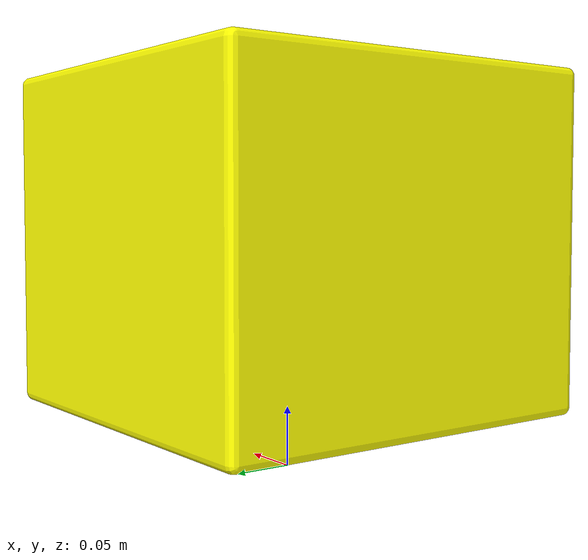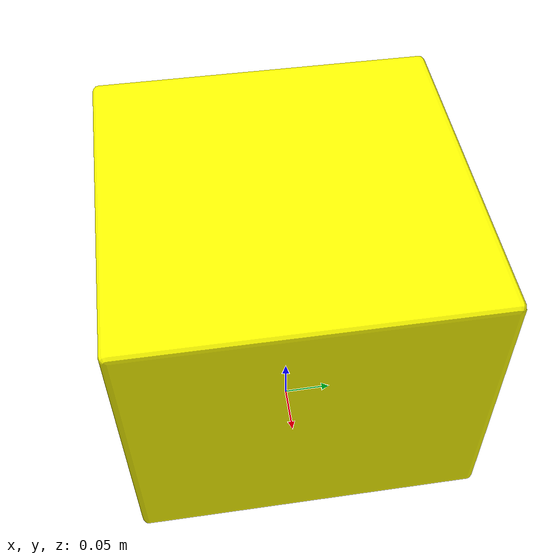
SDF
<?xml version="1.0" encoding="utf-8"?>
<sdf version="1.7">
  <model name="Cube">
    <pose>0 0 0.05 0 0 0</pose>
    <plugin name="clock" filename="libclock.so">
      <topic>/gazebo/frc/time</topic>
    </plugin>
    <link name="Body">
      <gravity>1</gravity>
      <self_collide>0</self_collide>
      <pose>0 0 0.1397 1.5707963267949 0 -1.5707963267949</pose>
      <must_be_base_link>1</must_be_base_link>
      <velocity_decay>
        <linear>0</linear>
        <angular>0</angular>
      </velocity_decay>
      <inertial>
        <mass>0.25</mass>
        <pose>0 0 0 0 0 0</pose>
        <inertia>
          <ixx>0.01</ixx>
          <ixy>0</ixy>
          <ixz>0</ixz>
          <iyy>0.01</iyy>
          <iyz>0</iyz>
          <izz>0.01</izz>
        </inertia>
      </inertial>
      <collision name="Body_collision">
        <pose>-0.1651 -0.1397 0.1651 0 0 0</pose>
        <geometry>
          <mesh>
            <scale>1 1 1</scale>
            <uri>model://Cube/meshes/Body_col.STL</uri>
          </mesh>
        </geometry>
        <surface>
           <contact>
            <ode>
              <kp>1e6</kp>
              <kd>2</kd>
            </ode>
          </contact>
          <friction>
            <ode>
              <mu>1</mu>
              <mu2>1</mu2>
            </ode>
          </friction>
        </surface>
      </collision>
      <visual name="Body_visual">
        <pose>-0.1651 -0.1397 0.1651 0 0 0</pose>
        <material>
          <ambient>1 1 0 1</ambient>
          <diffuse>1 1 0 1</diffuse>
        </material>
        <geometry>
          <mesh>
            <scale>1 1 1</scale>
            <uri>model://Cube/meshes/Body.STL</uri>
          </mesh>
        </geometry>
      </visual>
    </link>
  </model>
</sdf>
